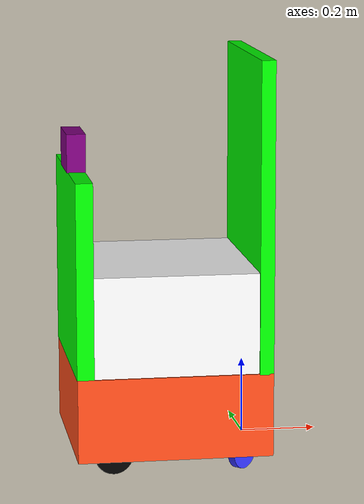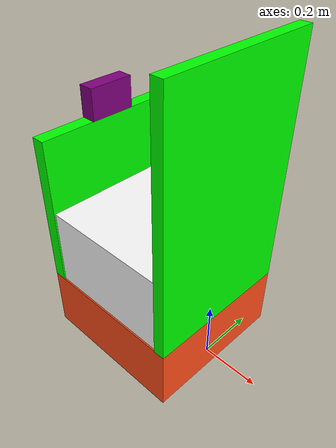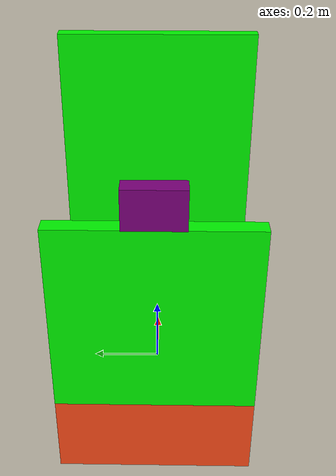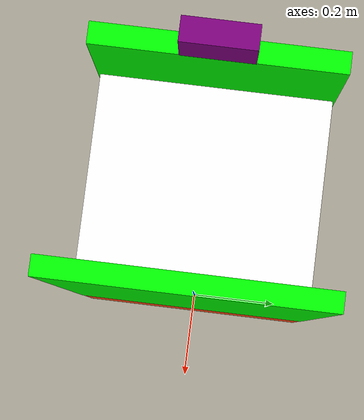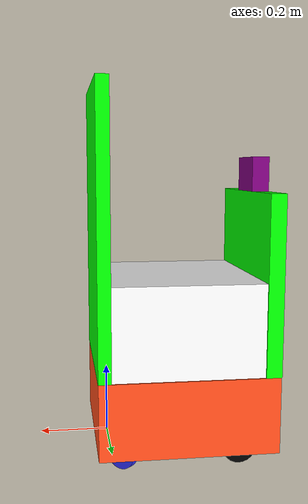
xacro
<?xml version="1.0"?>

<robot xmlns:xacro="http://www.ros.org/wiki/xacro" >

<xacro:include filename="inertial_macros.xacro"/>

    <xacro:property name="chassis_length" value="0.51"/>
    <xacro:property name="chassis_width" value="0.51"/>
    <xacro:property name="chassis_height" value="0.22"/>
    <xacro:property name="chassis_mass" value="25.0"/>
    <xacro:property name="wheel_radius" value="0.05"/> <!--jari jari roda-->
    <xacro:property name="wheel_thickness" value="0.02"/>
    <xacro:property name="wheel_mass" value="0.1"/>
    <xacro:property name="wheel_offset_x" value="-0.03"/>
    <xacro:property name="wheel_offset_y" value="0.18"/>
    <xacro:property name="wheel_offset_z" value="0"/>
    <xacro:property name="caster_wheel_radius" value="0.05"/>
    <xacro:property name="caster_wheel_mass" value="0.1"/>
    <xacro:property name="caster_wheel_offset_x" value="0.1"/>
    <xacro:property name="caster_wheel_offset_z" value="${wheel_offset_z - wheel_radius + caster_wheel_radius}"/>

    <material name="white">
        <color rgba="1 1 1 1" />
    </material>

    <material name="orange">
        <color rgba="1 0.3 0.1 1"/>
    </material>

    <material name="blue">
        <color rgba="0.2 0.2 1 1"/>
    </material>

    <material name="black">
        <color rgba="0 0 0 1"/>
    </material>

    <material name="purple">
        <color rgba="0.5 0.0 0.5 1"/> <!-- ungu -->
    </material>

    <material name="green">
        <color rgba="0.0 1.0 0.0 1"/> <!-- hijau -->
    </material>

    <!-- BASE LINK -->

    <link name="base_link">
    </link>

    <!-- BASE_FOOTPRINT LINK -->

    <joint name="base_footprint_joint" type="fixed">
        <parent link="base_link"/>
        <child link="base_footprint"/>
        <origin xyz="0 0 0" rpy="0 0 0"/>
    </joint>

    <link name="base_footprint">
    </link>

    <!-- CHASSIS LINK -->

    <joint name="chassis_joint" type="fixed">
        <parent link="base_link"/>
        <child link="chassis"/>
        <origin xyz="-0.47 0 0"/>
    </joint>

    <link name="chassis">
        <visual>
            <origin xyz="0.255 0 0.11"/>
            <geometry>
                <box size="${chassis_length} ${chassis_width} ${chassis_height}"/> <!-- pxlxt kotak bawah-->
            </geometry>
            <material name="orange"/>
        </visual>
        <collision>
            <origin xyz="0.255 0 0.11"/>
            <geometry>
                <box size="${chassis_length} ${chassis_width} ${chassis_height}"/>
            </geometry>
        </collision>
        <xacro:inertial_box mass="${chassis_mass}" x="${chassis_length}" y="${chassis_width}" z="${chassis_height}">
            <origin xyz="0.255 0 0.11" rpy="0 0 0"/>
        </xacro:inertial_box>
    </link>

    <gazebo reference="chassis">
        <material>Gazebo/Orange</material>
    </gazebo>

    <!-- BODY LINK -->
    <joint name="body_joint" type="fixed">
        <parent link="chassis"/>
        <child link="body"/>
        <origin xyz="0.25 0 0.56"/> <!-- 0.22 (tinggi chassis) / 2 + 0.9 / 2 = 0.11 + 0.45 = 0.56 -->
    </joint>

    <link name="body">
        <visual>
            <origin xyz="0 0 -0.21"/>
            <geometry>
                <box size="0.45 0.5 0.27"/>
            </geometry>
            <material name="white"/>
        </visual>
        <collision>
            <origin xyz="0 0 0"/>
            <geometry>
                <box size="0.45 0.5 0.27"/>
            </geometry>
        </collision>
        <xacro:inertial_box mass="2.0" x="0.45" y="0.5" z="0.27">
            <origin xyz="0 0 0" rpy="0 0 0"/>
        </xacro:inertial_box>
    </link>

    <gazebo reference="body">
        <material>Gazebo/White</material>
    </gazebo>

    <!-- SMALL UPPER FRONT BODY LINK -->

    <joint name="small_upper_body_joint" type="fixed">
        <parent link="body"/>
        <child link="small_upper_body"/>
        <origin xyz="-0.23 0 0.22"/>
    </joint>

    <link name="small_upper_body">
        <visual>
            <geometry>
                <box size="0.05 0.15 0.1"/> <!-- panjang x, lebar y, tinggi z -->
            </geometry>
            <material name="purple"/>
        </visual>
        <collision>
            <geometry>
                <box size="0.05 0.15 0.1"/>
            </geometry>
        </collision>
        <xacro:inertial_box mass="0.1" x="0.05" y="0.15" z="0.1">
            <origin xyz="0 0 0" rpy="0 0 0"/>
        </xacro:inertial_box>
    </link>

    <gazebo reference="small_upper_body">
        <material>Gazebo/Purple</material>
    </gazebo>

    <!-- TIANG DEPAN LINK -->
    <joint name="tiang_depan_joint" type="fixed">
        <parent link="chassis"/>
        <child link="tiang_depan"/>
        <origin xyz="0.492 0 0.575" rpy="0 0 0"/> <!-- pojok kiri belakang atas chassis -->
    </joint>

    <link name="tiang_depan">
        <visual>
            <origin xyz="0 0 0.05"/> <!-- tengah vertikal dari tiang -->
            <geometry>
                <box size="0.037 0.51 0.815"/>
            </geometry>
            <material name="green"/>
        </visual>
        <collision>
            <origin xyz="0 0 0.05"/>
            <geometry>
                <box size="0.037 0.51 0.815"/>
            </geometry>
        </collision>
        <xacro:inertial_box mass="0.2" x="0.037" y="0.51" z="0.815">
            <origin xyz="0 0 0.05" rpy="0 0 0"/>
        </xacro:inertial_box>
    </link>

    <gazebo reference="tiang_depan">
        <material>Gazebo/Green</material>
    </gazebo>

    <!-- TIANG BELAKANG LINK -->
    <joint name="tiang_belakang_joint" type="fixed">
        <parent link="chassis"/>
        <child link="tiang_belakang"/>
        <origin xyz="0.021 0 0.425" rpy="0 0 0"/> <!-- pojok kiri belakang atas chassis -->
    </joint>

    <link name="tiang_belakang">
        <visual>
            <origin xyz="0 0 0.05"/> <!-- tengah vertikal dari tiang -->
            <geometry>
                <box size="0.045 0.51 0.51"/>
            </geometry>
            <material name="green"/>
        </visual>
        <collision>
            <origin xyz="0 0 0.05"/>
            <geometry>
                <box size="0.045 0.51 0.51"/>
            </geometry>
        </collision>
        <xacro:inertial_box mass="0.2" x="0.045" y="0.51" z="0.51">
            <origin xyz="0 0 0.05" rpy="0 0 0"/>
        </xacro:inertial_box>
    </link>

    <gazebo reference="tiang_belakang">
        <material>Gazebo/Green</material>
    </gazebo>

    <!-- LEFT WHEEL LINK -->

    <joint name="left_wheel_joint" type="continuous">
        <parent link="base_link"/>
        <child link="left_wheel"/>
        <origin xyz="${wheel_offset_x} ${wheel_offset_y} ${wheel_offset_z}" rpy="-${pi/2} 0 -${pi/4}" /> <!-- rotasi roda-->
        <axis xyz="0 0 1"/>
    </joint>

    <link name="left_wheel">
        <visual>
            <geometry>
                <cylinder radius="${wheel_radius}" length="${wheel_thickness}"/>
            </geometry>
            <material name="blue"/>
        </visual>
        <collision>
            <geometry>
                <cylinder radius="${wheel_radius}" length="${wheel_thickness}"/>
            </geometry>
        </collision>
        <xacro:inertial_cylinder mass="${wheel_mass}" length="${wheel_thickness}" radius="${wheel_radius}">
            <origin xyz="0 0 0" rpy="0 0 0"/>
        </xacro:inertial_cylinder>
    </link>

    <gazebo reference="left_wheel">
        <material>Gazebo/Blue</material>
    </gazebo>

    <!-- RIGHT WHEEL LINK -->

    <joint name="right_wheel_joint" type="continuous">
        <parent link="base_link"/>
        <child link="right_wheel"/>
        <origin xyz="${wheel_offset_x} -${wheel_offset_y} ${wheel_offset_z}" rpy="${pi/2} 0 ${pi/4}" /> <!--{pi/4} -->
        <axis xyz="0 0 -1"/>
    </joint>

    <link name="right_wheel">
        <visual>
            <geometry>
                <cylinder radius="${wheel_radius}" length="${wheel_thickness}"/>
            </geometry>
            <material name="blue"/>
        </visual>
        <collision>
            <geometry>
                <cylinder radius="${wheel_radius}" length="${wheel_thickness}"/>
            </geometry>
        </collision>
        <xacro:inertial_cylinder mass="${wheel_mass}" length="${wheel_thickness}" radius="${wheel_radius}">
            <origin xyz="0 0 0" rpy="0 0 0"/>
        </xacro:inertial_cylinder>
    </link>

    <gazebo reference="right_wheel">
        <material>Gazebo/Blue</material>
    </gazebo>

    <!-- KIRI CASTER WHEEL LINK -->

    <joint name="left_caster_wheel_joint" type="fixed">
        <parent link="chassis"/>
        <child link="left_caster_wheel"/>
        <origin xyz="${caster_wheel_offset_x} ${wheel_offset_y} ${caster_wheel_offset_z}" rpy="-${pi/2} 0 0"/> <!-- orientasi silinder horizontal -->
    </joint>

    <link name="left_caster_wheel">
        <visual>
            <geometry>
                <cylinder radius="${caster_wheel_radius}" length="${wheel_thickness}"/>
            </geometry>
            <material name="black"/>
        </visual>
        <collision>
            <geometry>
                <cylinder radius="${caster_wheel_radius}" length="${wheel_thickness}"/>
            </geometry>
        </collision>
        <xacro:inertial_cylinder mass="${caster_wheel_mass}" length="${wheel_thickness}" radius="${caster_wheel_radius}">
            <origin xyz="0 0 0" rpy="0 0 0"/>
        </xacro:inertial_cylinder>
    </link>

    <gazebo reference="left_caster_wheel">
        <material>Gazebo/Black</material>
        <mu1 value="0.001"/>
        <mu2 value="0.001"/>
    </gazebo>

    <!-- KANAN CASTER WHEEL LINK -->

    <joint name="right_caster_wheel_joint" type="fixed">
        <parent link="chassis"/>
        <child link="right_caster_wheel"/>
        <origin xyz="${caster_wheel_offset_x} -${wheel_offset_y} ${caster_wheel_offset_z}" rpy="-${pi/2} 0 0"/> <!-- orientasi silinder horizontal -->
    </joint>

    <link name="right_caster_wheel">
        <visual>
            <geometry>
                <cylinder radius="${caster_wheel_radius}" length="${wheel_thickness}"/>
            </geometry>
            <material name="black"/>
        </visual>
        <collision>
            <geometry>
                <cylinder radius="${caster_wheel_radius}" length="${wheel_thickness}"/>
            </geometry>
        </collision>
        <xacro:inertial_cylinder mass="${caster_wheel_mass}" length="${wheel_thickness}" radius="${caster_wheel_radius}">
            <origin xyz="0 0 0" rpy="0 0 0"/>
        </xacro:inertial_cylinder>
    </link>

    <gazebo reference="right_caster_wheel">
        <material>Gazebo/Black</material>
        <mu1 value="0.001"/>
        <mu2 value="0.001"/>
    </gazebo>

</robot>
